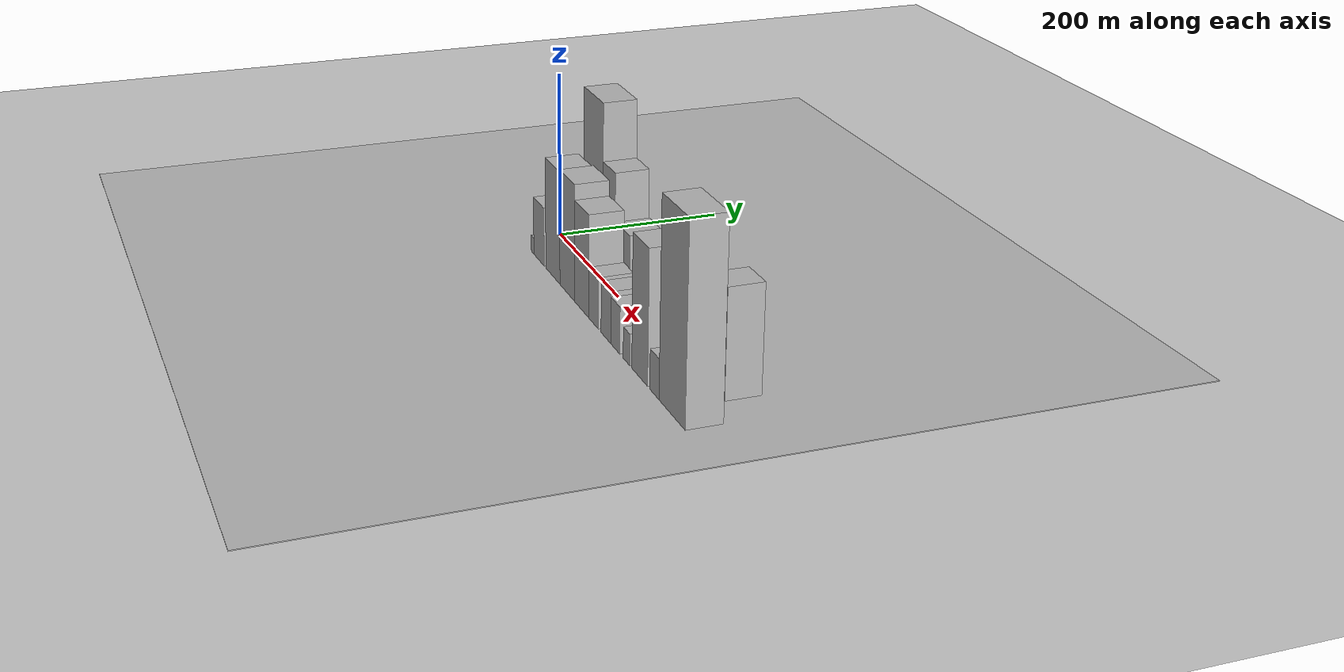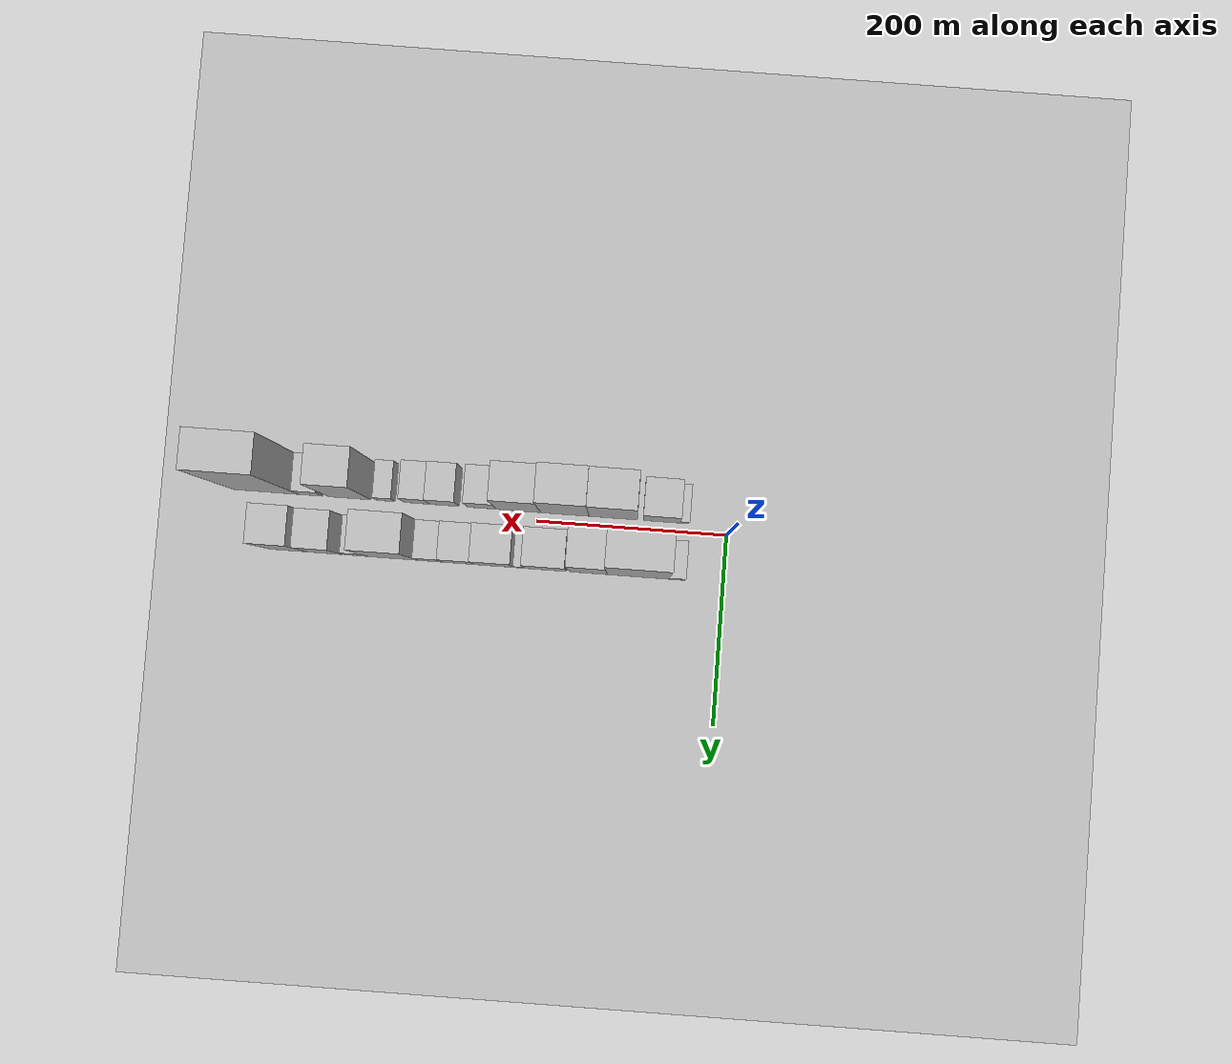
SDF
<?xml version="1.0" encoding="utf-8"?>

<sdf version="1.6">

   <world name="default">

      <gui fullscreen="0">

         <camera name="user_camera">

            <pose>-15 0 4.57585 0 0 0</pose>

            <view_controller>orbit</view_controller>

         </camera>

      </gui>

      <scene>

         <sky>

           <clouds>

             <speed>12</speed>

           </clouds>

         </sky>

         <ambient>0.4 0.4 0.4 1</ambient>

         <background>0.7 0.7 0.7 1</background>

         <shadows>1</shadows>

      </scene>

      <gravity>0 0 -9.8066</gravity>

      <magnetic_field>6e-06 2.3e-05 -4.2e-05</magnetic_field>

      <physics default="0" name="default_physics" type="ode">

         <ode>

            <solver>

               <type>quick</type>

               <iters>10</iters>

               <sor>1.0</sor>

               <use_dynamic_moi_rescaling>0</use_dynamic_moi_rescaling>

            </solver>

            <constraints>

               <cfm>0</cfm>

               <erp>0.2</erp>

               <contact_max_correcting_vel>100</contact_max_correcting_vel>

               <contact_surface_layer>0.001</contact_surface_layer>

            </constraints>

         </ode>

         <max_step_size>0.004</max_step_size>

         <real_time_factor>1</real_time_factor>

         <real_time_update_rate>250</real_time_update_rate>

      </physics>

      <light name="sun" type="directional">

         <cast_shadows>1</cast_shadows>

         <pose>0 0 10 0 0 0</pose>

         <diffuse>0.8 0.8 0.8 1</diffuse>

         <specular>0.2 0.2 0.2 1</specular>

         <attenuation>

            <range>1000</range>

            <constant>0.9</constant>

            <linear>0.01</linear>

            <quadratic>0.001</quadratic>

         </attenuation>

         <direction>-0.5 0.1 -0.9</direction>

      </light>

      <include>

         <name>ground_plane_1</name>

         <uri>model://HANNAS_ground_plane</uri>

         <pose>0 0 0  0 0 0</pose>

      </include>

      <include>

         <name>ground_plane_2</name>

         <uri>model://HANNAS_ground_plane</uri>

         <pose>100 0 0  0 0 0</pose>

      </include>

      <model name="building_1">

         <static>1</static>

         <pose frame="">48.6336 30.0000 0 0.000000 0.000000 1.570796</pose>

         <link name="link">

            <pose frame="">0 0 16.50 0 0 0</pose>

            <collision name="collision">

               <geometry>

                  <box>

                     <size>40.0000 17.2673 33.0000</size>

                  </box>

               </geometry>

               <max_contacts>10</max_contacts>

               <surface>

                  <contact>

                     <ode/>

                  </contact>

                  <bounce/>

                  <friction>

                     <torsional>

                        <ode/>

                     </torsional>

                     <ode/>

                  </friction>

               </surface>

            </collision>

            <visual name="visual">

               <cast_shadows>0</cast_shadows>

               <geometry>

                  <box>

                     <size>40.0000 17.2673 33.0000</size>

                  </box>

               </geometry>

               <material>

                  <script>

                     <uri>model://HANNAS_wall/materials/scripts</uri>

                     <uri>model://HANNAS_wall/materials/textures</uri>

                     <name>vrc/HANNAS_wall</name>

                  </script>

               </material>

            </visual>

            <self_collide>0</self_collide>

            <enable_wind>0</enable_wind>

            <kinematic>0</kinematic>

         </link>

      </model>

      <model name="building_2">

         <static>1</static>

         <pose frame="">89.6905 30.0000 0 0.000000 0.000000 1.570796</pose>

         <link name="link">

            <pose frame="">0 0 100.50 0 0 0</pose>

            <collision name="collision">

               <geometry>

                  <box>

                     <size>40.0000 64.8464 201.0000</size>

                  </box>

               </geometry>

               <max_contacts>10</max_contacts>

               <surface>

                  <contact>

                     <ode/>

                  </contact>

                  <bounce/>

                  <friction>

                     <torsional>

                        <ode/>

                     </torsional>

                     <ode/>

                  </friction>

               </surface>

            </collision>

            <visual name="visual">

               <cast_shadows>0</cast_shadows>

               <geometry>

                  <box>

                     <size>40.0000 64.8464 201.0000</size>

                  </box>

               </geometry>

               <material>

                  <script>

                     <uri>model://HANNAS_wall/materials/scripts</uri>

                     <uri>model://HANNAS_wall/materials/textures</uri>

                     <name>vrc/HANNAS_wall</name>

                  </script>

               </material>

            </visual>

            <self_collide>0</self_collide>

            <enable_wind>0</enable_wind>

            <kinematic>0</kinematic>

         </link>

      </model>

      <model name="building_3">

         <static>1</static>

         <pose frame="">141.9586 30.0000 0 0.000000 0.000000 1.570796</pose>

         <link name="link">

            <pose frame="">0 0 66.00 0 0 0</pose>

            <collision name="collision">

               <geometry>

                  <box>

                     <size>40.0000 39.6897 132.0000</size>

                  </box>

               </geometry>

               <max_contacts>10</max_contacts>

               <surface>

                  <contact>

                     <ode/>

                  </contact>

                  <bounce/>

                  <friction>

                     <torsional>

                        <ode/>

                     </torsional>

                     <ode/>

                  </friction>

               </surface>

            </collision>

            <visual name="visual">

               <cast_shadows>0</cast_shadows>

               <geometry>

                  <box>

                     <size>40.0000 39.6897 132.0000</size>

                  </box>

               </geometry>

               <material>

                  <script>

                     <uri>model://HANNAS_wall/materials/scripts</uri>

                     <uri>model://HANNAS_wall/materials/textures</uri>

                     <name>vrc/HANNAS_wall</name>

                  </script>

               </material>

            </visual>

            <self_collide>0</self_collide>

            <enable_wind>0</enable_wind>

            <kinematic>0</kinematic>

         </link>

      </model>

      <model name="building_4">

         <static>1</static>

         <pose frame="">187.0461 30.0000 0 0.000000 0.000000 1.570796</pose>

         <link name="link">

            <pose frame="">0 0 37.50 0 0 0</pose>

            <collision name="collision">

               <geometry>

                  <box>

                     <size>40.0000 44.4853 75.0000</size>

                  </box>

               </geometry>

               <max_contacts>10</max_contacts>

               <surface>

                  <contact>

                     <ode/>

                  </contact>

                  <bounce/>

                  <friction>

                     <torsional>

                        <ode/>

                     </torsional>

                     <ode/>

                  </friction>

               </surface>

            </collision>

            <visual name="visual">

               <cast_shadows>0</cast_shadows>

               <geometry>

                  <box>

                     <size>40.0000 44.4853 75.0000</size>

                  </box>

               </geometry>

               <material>

                  <script>

                     <uri>model://HANNAS_wall/materials/scripts</uri>

                     <uri>model://HANNAS_wall/materials/textures</uri>

                     <name>vrc/HANNAS_wall</name>

                  </script>

               </material>

            </visual>

            <self_collide>0</self_collide>

            <enable_wind>0</enable_wind>

            <kinematic>0</kinematic>

         </link>

      </model>

      <model name="building_5">

         <static>1</static>

         <pose frame="">214.8924 30.0000 0 0.000000 0.000000 1.570796</pose>

         <link name="link">

            <pose frame="">0 0 13.50 0 0 0</pose>

            <collision name="collision">

               <geometry>

                  <box>

                     <size>40.0000 11.2072 27.0000</size>

                  </box>

               </geometry>

               <max_contacts>10</max_contacts>

               <surface>

                  <contact>

                     <ode/>

                  </contact>

                  <bounce/>

                  <friction>

                     <torsional>

                        <ode/>

                     </torsional>

                     <ode/>

                  </friction>

               </surface>

            </collision>

            <visual name="visual">

               <cast_shadows>0</cast_shadows>

               <geometry>

                  <box>

                     <size>40.0000 11.2072 27.0000</size>

                  </box>

               </geometry>

               <material>

                  <script>

                     <uri>model://HANNAS_wall/materials/scripts</uri>

                     <uri>model://HANNAS_wall/materials/textures</uri>

                     <name>vrc/HANNAS_wall</name>

                  </script>

               </material>

            </visual>

            <self_collide>0</self_collide>

            <enable_wind>0</enable_wind>

            <kinematic>0</kinematic>

         </link>

      </model>

      <model name="building_6">

         <static>1</static>

         <pose frame="">241.4254 30.0000 0 0.000000 0.000000 1.570796</pose>

         <link name="link">

            <pose frame="">0 0 36.00 0 0 0</pose>

            <collision name="collision">

               <geometry>

                  <box>

                     <size>40.0000 41.8588 72.0000</size>

                  </box>

               </geometry>

               <max_contacts>10</max_contacts>

               <surface>

                  <contact>

                     <ode/>

                  </contact>

                  <bounce/>

                  <friction>

                     <torsional>

                        <ode/>

                     </torsional>

                     <ode/>

                  </friction>

               </surface>

            </collision>

            <visual name="visual">

               <cast_shadows>0</cast_shadows>

               <geometry>

                  <box>

                     <size>40.0000 41.8588 72.0000</size>

                  </box>

               </geometry>

               <material>

                  <script>

                     <uri>model://HANNAS_wall/materials/scripts</uri>

                     <uri>model://HANNAS_wall/materials/textures</uri>

                     <name>vrc/HANNAS_wall</name>

                  </script>

               </material>

            </visual>

            <self_collide>0</self_collide>

            <enable_wind>0</enable_wind>

            <kinematic>0</kinematic>

         </link>

      </model>

      <model name="building_7">

         <static>1</static>

         <pose frame="">279.3528 30.0000 0 0.000000 0.000000 1.570796</pose>

         <link name="link">

            <pose frame="">0 0 30.00 0 0 0</pose>

            <collision name="collision">

               <geometry>

                  <box>

                     <size>40.0000 33.9959 60.0000</size>

                  </box>

               </geometry>

               <max_contacts>10</max_contacts>

               <surface>

                  <contact>

                     <ode/>

                  </contact>

                  <bounce/>

                  <friction>

                     <torsional>

                        <ode/>

                     </torsional>

                     <ode/>

                  </friction>

               </surface>

            </collision>

            <visual name="visual">

               <cast_shadows>0</cast_shadows>

               <geometry>

                  <box>

                     <size>40.0000 33.9959 60.0000</size>

                  </box>

               </geometry>

               <material>

                  <script>

                     <uri>model://HANNAS_wall/materials/scripts</uri>

                     <uri>model://HANNAS_wall/materials/textures</uri>

                     <name>vrc/HANNAS_wall</name>

                  </script>

               </material>

            </visual>

            <self_collide>0</self_collide>

            <enable_wind>0</enable_wind>

            <kinematic>0</kinematic>

         </link>

      </model>

      <model name="building_8">

         <static>1</static>

         <pose frame="">309.3908 30.0000 0 0.000000 0.000000 1.570796</pose>

         <link name="link">

            <pose frame="">0 0 25.50 0 0 0</pose>

            <collision name="collision">

               <geometry>

                  <box>

                     <size>40.0000 26.0800 51.0000</size>

                  </box>

               </geometry>

               <max_contacts>10</max_contacts>

               <surface>

                  <contact>

                     <ode/>

                  </contact>

                  <bounce/>

                  <friction>

                     <torsional>

                        <ode/>

                     </torsional>

                     <ode/>

                  </friction>

               </surface>

            </collision>

            <visual name="visual">

               <cast_shadows>0</cast_shadows>

               <geometry>

                  <box>

                     <size>40.0000 26.0800 51.0000</size>

                  </box>

               </geometry>

               <material>

                  <script>

                     <uri>model://HANNAS_wall/materials/scripts</uri>

                     <uri>model://HANNAS_wall/materials/textures</uri>

                     <name>vrc/HANNAS_wall</name>

                  </script>

               </material>

            </visual>

            <self_collide>0</self_collide>

            <enable_wind>0</enable_wind>

            <kinematic>0</kinematic>

         </link>

      </model>

      <model name="building_9">

         <static>1</static>

         <pose frame="">348.8653 30.0000 0 0.000000 0.000000 1.570796</pose>

         <link name="link">

            <pose frame="">0 0 72.00 0 0 0</pose>

            <collision name="collision">

               <geometry>

                  <box>

                     <size>40.0000 52.8689 144.0000</size>

                  </box>

               </geometry>

               <max_contacts>10</max_contacts>

               <surface>

                  <contact>

                     <ode/>

                  </contact>

                  <bounce/>

                  <friction>

                     <torsional>

                        <ode/>

                     </torsional>

                     <ode/>

                  </friction>

               </surface>

            </collision>

            <visual name="visual">

               <cast_shadows>0</cast_shadows>

               <geometry>

                  <box>

                     <size>40.0000 52.8689 144.0000</size>

                  </box>

               </geometry>

               <material>

                  <script>

                     <uri>model://HANNAS_wall/materials/scripts</uri>

                     <uri>model://HANNAS_wall/materials/textures</uri>

                     <name>vrc/HANNAS_wall</name>

                  </script>

               </material>

            </visual>

            <self_collide>0</self_collide>

            <enable_wind>0</enable_wind>

            <kinematic>0</kinematic>

         </link>

      </model>

      <model name="building_10">

         <static>1</static>

         <pose frame="">386.9955 30.0000 0 0.000000 0.000000 1.570796</pose>

         <link name="link">

            <pose frame="">0 0 21.00 0 0 0</pose>

            <collision name="collision">

               <geometry>

                  <box>

                     <size>40.0000 23.3917 42.0000</size>

                  </box>

               </geometry>

               <max_contacts>10</max_contacts>

               <surface>

                  <contact>

                     <ode/>

                  </contact>

                  <bounce/>

                  <friction>

                     <torsional>

                        <ode/>

                     </torsional>

                     <ode/>

                  </friction>

               </surface>

            </collision>

            <visual name="visual">

               <cast_shadows>0</cast_shadows>

               <geometry>

                  <box>

                     <size>40.0000 23.3917 42.0000</size>

                  </box>

               </geometry>

               <material>

                  <script>

                     <uri>model://HANNAS_wall/materials/scripts</uri>

                     <uri>model://HANNAS_wall/materials/textures</uri>

                     <name>vrc/HANNAS_wall</name>

                  </script>

               </material>

            </visual>

            <self_collide>0</self_collide>

            <enable_wind>0</enable_wind>

            <kinematic>0</kinematic>

         </link>

      </model>

      <model name="building_11">

         <static>1</static>

         <pose frame="">419.8561 30.0000 0 0.000000 0.000000 1.570796</pose>

         <link name="link">

            <pose frame="">0 0 48.00 0 0 0</pose>

            <collision name="collision">

               <geometry>

                  <box>

                     <size>40.0000 36.3294 96.0000</size>

                  </box>

               </geometry>

               <max_contacts>10</max_contacts>

               <surface>

                  <contact>

                     <ode/>

                  </contact>

                  <bounce/>

                  <friction>

                     <torsional>

                        <ode/>

                     </torsional>

                     <ode/>

                  </friction>

               </surface>

            </collision>

            <visual name="visual">

               <cast_shadows>0</cast_shadows>

               <geometry>

                  <box>

                     <size>40.0000 36.3294 96.0000</size>

                  </box>

               </geometry>

               <material>

                  <script>

                     <uri>model://HANNAS_wall/materials/scripts</uri>

                     <uri>model://HANNAS_wall/materials/textures</uri>

                     <name>vrc/HANNAS_wall</name>

                  </script>

               </material>

            </visual>

            <self_collide>0</self_collide>

            <enable_wind>0</enable_wind>

            <kinematic>0</kinematic>

         </link>

      </model>

      <model name="building_12">

         <static>1</static>

         <pose frame="">458.2230 30.0000 0 0.000000 0.000000 1.570796</pose>

         <link name="link">

            <pose frame="">0 0 61.50 0 0 0</pose>

            <collision name="collision">

               <geometry>

                  <box>

                     <size>40.0000 40.4044 123.0000</size>

                  </box>

               </geometry>

               <max_contacts>10</max_contacts>

               <surface>

                  <contact>

                     <ode/>

                  </contact>

                  <bounce/>

                  <friction>

                     <torsional>

                        <ode/>

                     </torsional>

                     <ode/>

                  </friction>

               </surface>

            </collision>

            <visual name="visual">

               <cast_shadows>0</cast_shadows>

               <geometry>

                  <box>

                     <size>40.0000 40.4044 123.0000</size>

                  </box>

               </geometry>

               <material>

                  <script>

                     <uri>model://HANNAS_wall/materials/scripts</uri>

                     <uri>model://HANNAS_wall/materials/textures</uri>

                     <name>vrc/HANNAS_wall</name>

                  </script>

               </material>

            </visual>

            <self_collide>0</self_collide>

            <enable_wind>0</enable_wind>

            <kinematic>0</kinematic>

         </link>

      </model>

      <model name="building_13">

         <static>1</static>

         <pose frame="">44.9493 -30.0000 0 0.000000 0.000000 1.570796</pose>

         <link name="link">

            <pose frame="">0 0 10.50 0 0 0</pose>

            <collision name="collision">

               <geometry>

                  <box>

                     <size>40.0000 9.8985 21.0000</size>

                  </box>

               </geometry>

               <max_contacts>10</max_contacts>

               <surface>

                  <contact>

                     <ode/>

                  </contact>

                  <bounce/>

                  <friction>

                     <torsional>

                        <ode/>

                     </torsional>

                     <ode/>

                  </friction>

               </surface>

            </collision>

            <visual name="visual">

               <cast_shadows>0</cast_shadows>

               <geometry>

                  <box>

                     <size>40.0000 9.8985 21.0000</size>

                  </box>

               </geometry>

               <material>

                  <script>

                     <uri>model://HANNAS_wall/materials/scripts</uri>

                     <uri>model://HANNAS_wall/materials/textures</uri>

                     <name>vrc/HANNAS_wall</name>

                  </script>

               </material>

            </visual>

            <self_collide>0</self_collide>

            <enable_wind>0</enable_wind>

            <kinematic>0</kinematic>

         </link>

      </model>

      <model name="building_14">

         <static>1</static>

         <pose frame="">69.4483 -30.0000 0 0.000000 0.000000 1.570796</pose>

         <link name="link">

            <pose frame="">0 0 36.00 0 0 0</pose>

            <collision name="collision">

               <geometry>

                  <box>

                     <size>40.0000 39.0995 72.0000</size>

                  </box>

               </geometry>

               <max_contacts>10</max_contacts>

               <surface>

                  <contact>

                     <ode/>

                  </contact>

                  <bounce/>

                  <friction>

                     <torsional>

                        <ode/>

                     </torsional>

                     <ode/>

                  </friction>

               </surface>

            </collision>

            <visual name="visual">

               <cast_shadows>0</cast_shadows>

               <geometry>

                  <box>

                     <size>40.0000 39.0995 72.0000</size>

                  </box>

               </geometry>

               <material>

                  <script>

                     <uri>model://HANNAS_wall/materials/scripts</uri>

                     <uri>model://HANNAS_wall/materials/textures</uri>

                     <name>vrc/HANNAS_wall</name>

                  </script>

               </material>

            </visual>

            <self_collide>0</self_collide>

            <enable_wind>0</enable_wind>

            <kinematic>0</kinematic>

         </link>

      </model>

      <model name="building_15">

         <static>1</static>

         <pose frame="">120.4078 -30.0000 0 0.000000 0.000000 1.570796</pose>

         <link name="link">

            <pose frame="">0 0 67.50 0 0 0</pose>

            <collision name="collision">

               <geometry>

                  <box>

                     <size>40.0000 50.8197 135.0000</size>

                  </box>

               </geometry>

               <max_contacts>10</max_contacts>

               <surface>

                  <contact>

                     <ode/>

                  </contact>

                  <bounce/>

                  <friction>

                     <torsional>

                        <ode/>

                     </torsional>

                     <ode/>

                  </friction>

               </surface>

            </collision>

            <visual name="visual">

               <cast_shadows>0</cast_shadows>

               <geometry>

                  <box>

                     <size>40.0000 50.8197 135.0000</size>

                  </box>

               </geometry>

               <material>

                  <script>

                     <uri>model://HANNAS_wall/materials/scripts</uri>

                     <uri>model://HANNAS_wall/materials/textures</uri>

                     <name>vrc/HANNAS_wall</name>

                  </script>

               </material>

            </visual>

            <self_collide>0</self_collide>

            <enable_wind>0</enable_wind>

            <kinematic>0</kinematic>

         </link>

      </model>

      <model name="building_16">

         <static>1</static>

         <pose frame="">171.4728 -30.0000 0 0.000000 0.000000 1.570796</pose>

         <link name="link">

            <pose frame="">0 0 69.00 0 0 0</pose>

            <collision name="collision">

               <geometry>

                  <box>

                     <size>40.0000 51.3102 138.0000</size>

                  </box>

               </geometry>

               <max_contacts>10</max_contacts>

               <surface>

                  <contact>

                     <ode/>

                  </contact>

                  <bounce/>

                  <friction>

                     <torsional>

                        <ode/>

                     </torsional>

                     <ode/>

                  </friction>

               </surface>

            </collision>

            <visual name="visual">

               <cast_shadows>0</cast_shadows>

               <geometry>

                  <box>

                     <size>40.0000 51.3102 138.0000</size>

                  </box>

               </geometry>

               <material>

                  <script>

                     <uri>model://HANNAS_wall/materials/scripts</uri>

                     <uri>model://HANNAS_wall/materials/textures</uri>

                     <name>vrc/HANNAS_wall</name>

                  </script>

               </material>

            </visual>

            <self_collide>0</self_collide>

            <enable_wind>0</enable_wind>

            <kinematic>0</kinematic>

         </link>

      </model>

      <model name="building_17">

         <static>1</static>

         <pose frame="">220.5222 -30.0000 0 0.000000 0.000000 1.570796</pose>

         <link name="link">

            <pose frame="">0 0 60.00 0 0 0</pose>

            <collision name="collision">

               <geometry>

                  <box>

                     <size>40.0000 46.7887 120.0000</size>

                  </box>

               </geometry>

               <max_contacts>10</max_contacts>

               <surface>

                  <contact>

                     <ode/>

                  </contact>

                  <bounce/>

                  <friction>

                     <torsional>

                        <ode/>

                     </torsional>

                     <ode/>

                  </friction>

               </surface>

            </collision>

            <visual name="visual">

               <cast_shadows>0</cast_shadows>

               <geometry>

                  <box>

                     <size>40.0000 46.7887 120.0000</size>

                  </box>

               </geometry>

               <material>

                  <script>

                     <uri>model://HANNAS_wall/materials/scripts</uri>

                     <uri>model://HANNAS_wall/materials/textures</uri>

                     <name>vrc/HANNAS_wall</name>

                  </script>

               </material>

            </visual>

            <self_collide>0</self_collide>

            <enable_wind>0</enable_wind>

            <kinematic>0</kinematic>

         </link>

      </model>

      <model name="building_18">

         <static>1</static>

         <pose frame="">259.2537 -30.0000 0 0.000000 0.000000 1.570796</pose>

         <link name="link">

            <pose frame="">0 0 30.00 0 0 0</pose>

            <collision name="collision">

               <geometry>

                  <box>

                     <size>40.0000 30.6743 60.0000</size>

                  </box>

               </geometry>

               <max_contacts>10</max_contacts>

               <surface>

                  <contact>

                     <ode/>

                  </contact>

                  <bounce/>

                  <friction>

                     <torsional>

                        <ode/>

                     </torsional>

                     <ode/>

                  </friction>

               </surface>

            </collision>

            <visual name="visual">

               <cast_shadows>0</cast_shadows>

               <geometry>

                  <box>

                     <size>40.0000 30.6743 60.0000</size>

                  </box>

               </geometry>

               <material>

                  <script>

                     <uri>model://HANNAS_wall/materials/scripts</uri>

                     <uri>model://HANNAS_wall/materials/textures</uri>

                     <name>vrc/HANNAS_wall</name>

                  </script>

               </material>

            </visual>

            <self_collide>0</self_collide>

            <enable_wind>0</enable_wind>

            <kinematic>0</kinematic>

         </link>

      </model>

      <model name="building_19">

         <static>1</static>

         <pose frame="">299.0640 -30.0000 0 0.000000 0.000000 1.570796</pose>

         <link name="link">

            <pose frame="">0 0 30.00 0 0 0</pose>

            <collision name="collision">

               <geometry>

                  <box>

                     <size>40.0000 30.9463 60.0000</size>

                  </box>

               </geometry>

               <max_contacts>10</max_contacts>

               <surface>

                  <contact>

                     <ode/>

                  </contact>

                  <bounce/>

                  <friction>

                     <torsional>

                        <ode/>

                     </torsional>

                     <ode/>

                  </friction>

               </surface>

            </collision>

            <visual name="visual">

               <cast_shadows>0</cast_shadows>

               <geometry>

                  <box>

                     <size>40.0000 30.9463 60.0000</size>

                  </box>

               </geometry>

               <material>

                  <script>

                     <uri>model://HANNAS_wall/materials/scripts</uri>

                     <uri>model://HANNAS_wall/materials/textures</uri>

                     <name>vrc/HANNAS_wall</name>

                  </script>

               </material>

            </visual>

            <self_collide>0</self_collide>

            <enable_wind>0</enable_wind>

            <kinematic>0</kinematic>

         </link>

      </model>

      <model name="building_20">

         <static>1</static>

         <pose frame="">328.0659 -30.0000 0 0.000000 0.000000 1.570796</pose>

         <link name="link">

            <pose frame="">0 0 27.00 0 0 0</pose>

            <collision name="collision">

               <geometry>

                  <box>

                     <size>40.0000 27.0576 54.0000</size>

                  </box>

               </geometry>

               <max_contacts>10</max_contacts>

               <surface>

                  <contact>

                     <ode/>

                  </contact>

                  <bounce/>

                  <friction>

                     <torsional>

                        <ode/>

                     </torsional>

                     <ode/>

                  </friction>

               </surface>

            </collision>

            <visual name="visual">

               <cast_shadows>0</cast_shadows>

               <geometry>

                  <box>

                     <size>40.0000 27.0576 54.0000</size>

                  </box>

               </geometry>

               <material>

                  <script>

                     <uri>model://HANNAS_wall/materials/scripts</uri>

                     <uri>model://HANNAS_wall/materials/textures</uri>

                     <name>vrc/HANNAS_wall</name>

                  </script>

               </material>

            </visual>

            <self_collide>0</self_collide>

            <enable_wind>0</enable_wind>

            <kinematic>0</kinematic>

         </link>

      </model>

      <model name="building_21">

         <static>1</static>

         <pose frame="">361.3091 -30.0000 0 0.000000 0.000000 1.570796</pose>

         <link name="link">

            <pose frame="">0 0 18.00 0 0 0</pose>

            <collision name="collision">

               <geometry>

                  <box>

                     <size>40.0000 19.4288 36.0000</size>

                  </box>

               </geometry>

               <max_contacts>10</max_contacts>

               <surface>

                  <contact>

                     <ode/>

                  </contact>

                  <bounce/>

                  <friction>

                     <torsional>

                        <ode/>

                     </torsional>

                     <ode/>

                  </friction>

               </surface>

            </collision>

            <visual name="visual">

               <cast_shadows>0</cast_shadows>

               <geometry>

                  <box>

                     <size>40.0000 19.4288 36.0000</size>

                  </box>

               </geometry>

               <material>

                  <script>

                     <uri>model://HANNAS_wall/materials/scripts</uri>

                     <uri>model://HANNAS_wall/materials/textures</uri>

                     <name>vrc/HANNAS_wall</name>

                  </script>

               </material>

            </visual>

            <self_collide>0</self_collide>

            <enable_wind>0</enable_wind>

            <kinematic>0</kinematic>

         </link>

      </model>

      <model name="building_22">

         <static>1</static>

         <pose frame="">399.7048 -30.0000 0 0.000000 0.000000 1.570796</pose>

         <link name="link">

            <pose frame="">0 0 75.00 0 0 0</pose>

            <collision name="collision">

               <geometry>

                  <box>

                     <size>40.0000 45.3625 150.0000</size>

                  </box>

               </geometry>

               <max_contacts>10</max_contacts>

               <surface>

                  <contact>

                     <ode/>

                  </contact>

                  <bounce/>

                  <friction>

                     <torsional>

                        <ode/>

                     </torsional>

                     <ode/>

                  </friction>

               </surface>

            </collision>

            <visual name="visual">

               <cast_shadows>0</cast_shadows>

               <geometry>

                  <box>

                     <size>40.0000 45.3625 150.0000</size>

                  </box>

               </geometry>

               <material>

                  <script>

                     <uri>model://HANNAS_wall/materials/scripts</uri>

                     <uri>model://HANNAS_wall/materials/textures</uri>

                     <name>vrc/HANNAS_wall</name>

                  </script>

               </material>

            </visual>

            <self_collide>0</self_collide>

            <enable_wind>0</enable_wind>

            <kinematic>0</kinematic>

         </link>

      </model>

      <model name="building_23">

         <static>1</static>

         <pose frame="">441.1573 -30.0000 0 0.000000 0.000000 1.570796</pose>

         <link name="link">

            <pose frame="">0 0 22.50 0 0 0</pose>

            <collision name="collision">

               <geometry>

                  <box>

                     <size>40.0000 25.5424 45.0000</size>

                  </box>

               </geometry>

               <max_contacts>10</max_contacts>

               <surface>

                  <contact>

                     <ode/>

                  </contact>

                  <bounce/>

                  <friction>

                     <torsional>

                        <ode/>

                     </torsional>

                     <ode/>

                  </friction>

               </surface>

            </collision>

            <visual name="visual">

               <cast_shadows>0</cast_shadows>

               <geometry>

                  <box>

                     <size>40.0000 25.5424 45.0000</size>

                  </box>

               </geometry>

               <material>

                  <script>

                     <uri>model://HANNAS_wall/materials/scripts</uri>

                     <uri>model://HANNAS_wall/materials/textures</uri>

                     <name>vrc/HANNAS_wall</name>

                  </script>

               </material>

            </visual>

            <self_collide>0</self_collide>

            <enable_wind>0</enable_wind>

            <kinematic>0</kinematic>

         </link>

      </model>

      <model name="building_24">

         <static>1</static>

         <pose frame="">488.4590 -30.0000 0 0.000000 0.000000 1.570796</pose>

         <link name="link">

            <pose frame="">0 0 109.50 0 0 0</pose>

            <collision name="collision">

               <geometry>

                  <box>

                     <size>40.0000 69.0610 219.0000</size>

                  </box>

               </geometry>

               <max_contacts>10</max_contacts>

               <surface>

                  <contact>

                     <ode/>

                  </contact>

                  <bounce/>

                  <friction>

                     <torsional>

                        <ode/>

                     </torsional>

                     <ode/>

                  </friction>

               </surface>

            </collision>

            <visual name="visual">

               <cast_shadows>0</cast_shadows>

               <geometry>

                  <box>

                     <size>40.0000 69.0610 219.0000</size>

                  </box>

               </geometry>

               <material>

                  <script>

                     <uri>model://HANNAS_wall/materials/scripts</uri>

                     <uri>model://HANNAS_wall/materials/textures</uri>

                     <name>vrc/HANNAS_wall</name>

                  </script>

               </material>

            </visual>

            <self_collide>0</self_collide>

            <enable_wind>0</enable_wind>

            <kinematic>0</kinematic>

         </link>

      </model>

   </world>

</sdf>

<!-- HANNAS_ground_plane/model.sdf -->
<sdf version="1.4">
<model name="HANNAS_ground_plane">
  <static>true</static>
    <link name="link">
      <collision name="collision">
        <geometry>
          <plane>
            <normal>0 0 1</normal>
            <size>1000 1000</size>
          </plane>
        </geometry>
        <surface>
          <friction>
            <ode>
              <mu>100</mu>
              <mu2>50</mu2>
            </ode>
          </friction>
        </surface>
      </collision>
      <visual name="visual">
        <cast_shadows>false</cast_shadows>
        <geometry>
          <plane>
            <normal>0 0 1</normal>
            <size>1000 1000</size>
          </plane>
        </geometry>
        <material>
          <script>
            <uri>model://HANNAS_ground_plane/materials/scripts/HANNAS_ground_plane.material</uri>
	    <uri>model://HANNAS_ground_plane/materials/textures</uri>
            <name>HANNASGroundPlane/Image</name>
          </script>
        </material>
      </visual>
    </link>
  </model>
</sdf>
